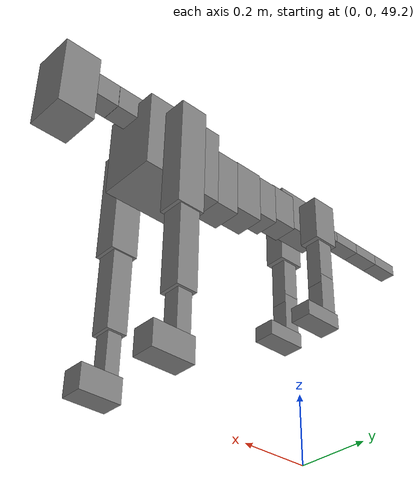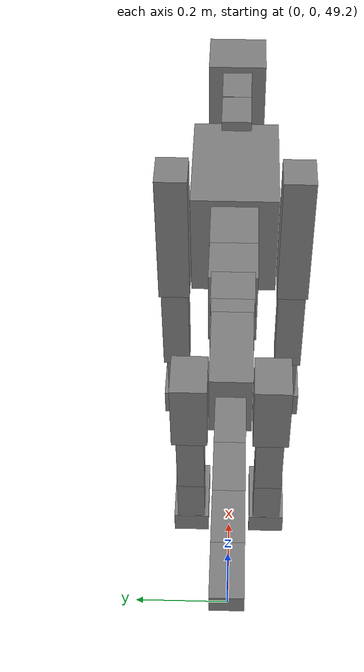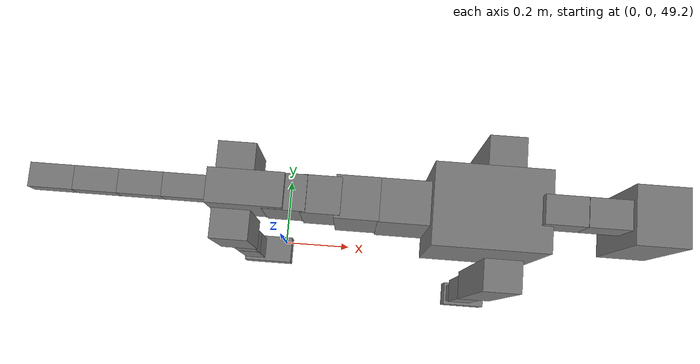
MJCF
<mujoco model="dog">

    <default>
        <joint armature="0.02" stiffness="1" damping="0.2" limited="true"/>
        <geom condim="3" friction="1 0.05 0.05" margin="0.01"/>
        <motor ctrllimited="true" ctrlrange="-1.0 1.0" forcelimited="true" gear="50"/>
    </default>

    <compiler inertiafromgeom="true" angle="radian"/>

    <option timestep="0.016" iterations="50" tolerance="1e-10" solver="Newton" jacobian="dense" cone="pyramidal"/>

    <size nconmax="20000" njmax="60000" nstack="5000000"/>
    <visual>
        <map force="0.1" zfar="30"/>
        <rgba haze="0.15 0.25 0.35 1"/>
        <quality shadowsize="2048"/>
        <global offwidth="800" offheight="800"/>
    </visual>

    <asset>
        <texture type="skybox" builtin="gradient" rgb1="0.3 0.5 0.7" rgb2="0 0 0" width="512" height="512"/>
        <texture name="texplane" type="2d" builtin="checker" rgb1=".2 .3 .4" rgb2=".1 0.15 0.2" width="512" height="512"
                 mark="cross" markrgb=".8 .8 .8"/>
        <texture name="texgeom" type="cube" builtin="flat" mark="cross" width="127" height="1278" rgb1="0.8 0.6 0.4"
                 rgb2="0.8 0.6 0.4" markrgb="1 1 1" random="0.01"/>

        <material name="matplane" reflectance="0.3" texture="texplane" texrepeat="1 1" texuniform="true"/>
        <material name="matgeom" texture="texgeom" texuniform="true" rgba="0.8 0.6 .4 1"/>
    </asset>

    <worldbody>
        <geom name="floor" pos="0 0 0" size="0 0 .25" type="plane" material="matplane" condim="3"/>

        <light directional="false" diffuse=".2 .2 .2" specular="0 0 0" pos="0 0 5" dir="0 0 -1" castshadow="false"/>
        <light mode="targetbodycom" target="torso" directional="false" diffuse=".8 .8 .8" specular="0.3 0.3 0.3"
               pos="0 0 4.0" dir="0 0 -1"/>

        <body name="root" pos="0 0 50">
            <freejoint name="root_1"/>
            <geom type="box" pos="0 0 -0.02" size="0.0774  0.0358  0.063" density="2030"/>

            <body name="spine1" pos="0.054 0 0">
                <joint name="spine1_y" axis="0 1 0" range="0 0.7" limited="true"/>
                <geom type="box" pos="0.02375 0 -0.03" size="0.04375  0.0375  0.05985" density="2030"/>

                <body name="spine2" pos="0.0612 0 0">
                    <joint name="spine2_y" axis="0 1 0" range="-0.15 0.15" limited="true"/>
                    <geom type="box" pos="0.03555  0  -0.04" size="0.04055  0.039  0.06615" density="2030"/>

                    <body name="spine3" pos="0.0730 0 0">
                        <joint name="spine3_y" axis="0 1 0" range="-0.15 0.15" limited="true"/>
                        <geom type="box" pos="0.03555  0  -0.057" size="0.04555  0.0445  0.081" density="2030"/>

                        <body name="spine4" pos="0.0780 0 0">
                            <joint name="spine4_y" axis="0 1 0" range="-0.15 0.15" limited="true"/>
                            <geom type="box" pos="0.05265  0  -0.07" size="0.05265  0.045  0.09135" density="2030"/>

                            <body name="torso" pos="0.1082 0 0">
                                <joint name="torso_y" axis="0 1 0" range="-0.15 0.15" limited="true"/>
                                <geom type="box" pos="0.11925  0  -0.085" size="0.11925  0.085  0.11745"
                                      density="2030"/>

                                <body name="neck1" pos="0.2160  0   0.0180">
                                    <joint name="neck1_y" axis="0 1 0" range="-1.2  -1" limited="true"/>
                                    <geom type="box" pos="0.0423  0  0" size="0.0423  0.03  0.036" density="2325"/>

                                    <body name="neck2" pos="0.0853  0  0">
                                        <joint name="neck2_y" axis="0 1 0" range="0.1  0" limited="true"/>
                                        <geom type="box" pos="0.0423  0  0" size="0.0423  0.03  0.036" density="2325"/>

                                        <body name="head" pos="0.0853  0  0">
                                            <joint name="head_y" axis="0 1 0" range="-0.3  -0.2" limited="true"/>
                                            <geom type="box" pos="0.0531  0  -0.055" size="0.0531  0.06  0.1044"
                                                  density="4030"/>

                                        </body>
                                    </body>
                                </body>

                                <body name="front_shoulder" pos="0.156  0   -0.0480">
                                    <joint name="front_shoulder_y" axis="0 1 0" range="-1 1.5" limited="true"/>
                                    <geom type="box" pos="0 0.13 -0.1364" size="0.0398  0.0341  0.1630" density="1158"/>
                                    <geom type="box" pos="0 -0.13 -0.1364" size="0.0398  0.0341  0.1630"
                                          density="1158"/>

                                    <body name="front_elbow" pos="0  0  -0.2728">
                                        <joint name="front_elbow_y" axis="0 1 0" range="-2 0" limited="true"/>
                                        <geom type="box" pos="0 0.13 -0.1294" size="0.0297  0.0303  0.1294"
                                              density="1081"/>
                                        <geom type="box" pos="0 -0.13 -0.1294" size="0.0297  0.0303  0.1294"
                                              density="1081"/>

                                        <body name="front_wrist" pos="0  0  -0.2588">
                                            <joint name="front_wrist_y" axis="0 1 0" range="-0.2 0" limited="true"/>
                                            <geom type="box" pos="0 0.13 -0.0661" size="0.0206  0.0229  0.0792"
                                                  density="1664"/>
                                            <geom type="box" pos="0 -0.13 -0.0661" size="0.0206  0.0229  0.0792"
                                                  density="1664"/>

                                            <body name="front_finger_end" pos="0  0  -0.1321">
                                                <joint name="front_finger_y" axis="0 1 0" range="-0.4 1"
                                                       limited="true"/>
                                                <geom type="box" pos="0.0325  0.13  -0.0202"
                                                      size="0.0596  0.0325  0.0352" density="1515"/>
                                                <geom type="box" pos="0.0325  -0.13  -0.0202"
                                                      size="0.0596  0.0325  0.0352" density="1515"/>

                                            </body>

                                        </body>
                                    </body>
                                </body>

                            </body>
                        </body>
                    </body>
                </body>
            </body>

            <body name="back_hip" pos="-0.03 0 -0.018">
                <joint name="back_hip_y" axis="0 1 0" range="-1.5 0.3" limited="true"/>
                <geom type="box" pos="0 0.07 -0.0482" size="0.0397  0.0312  0.0710" density="1154"/>
                <geom type="box" pos="0 -0.07 -0.0482" size="0.0397  0.0312  0.0710" density="1154"/>

                <body name="back_knee" pos="0  0  -0.0964">
                    <joint name="back_knee_y" axis="0 1 0" range="0 2.8" limited="true"/>
                    <geom type="box" pos="0 0.07 -0.0759" size="0.0248  0.0245  0.0914" density="1227"/>
                    <geom type="box" pos="0 -0.07 -0.0759" size="0.0248  0.0245  0.0914" density="1227"/>

                    <body name="back_ankle" pos="0  0  -0.1518">
                        <joint name="back_ankle_y" axis="0 1 0" range="-2.2 0" limited="true"/>
                        <geom type="box" pos="0 0.07 -0.0617" size="0.0247  0.0247  0.0729" density="1284"/>
                        <geom type="box" pos="0 -0.07 -0.0617" size="0.0247  0.0247  0.0729" density="1284"/>

                        <body name="back_toe_end" pos="0  0  -0.1233">
                            <joint name="back_toe_y" axis="0 1 0" range="-0.4 1" limited="true"/>
                            <geom type="box" pos="0.0319  0.07  -0.0076" size="0.0585  0.0319  0.0226" density="1515"/>
                            <geom type="box" pos="0.0319  -0.07  -0.0076" size="0.0585  0.0319  0.0226" density="1515"/>

                        </body>
                    </body>
                </body>
            </body>

            <body name="tail1" pos="-0.074 0 -0.006">
                <joint name="tail1_y" axis="0 1 0" range="-0.2 0.2" limited="true"/>
                <geom type="box" pos="-0.0536  0  0" size="0.045  0.025  0.0175" density="1587"/>

                <body name="tail2" pos="-0.09 0 0">
                    <joint name="tail2_y" axis="0 1 0" range="-0.2 0.2" limited="true"/>
                    <geom type="box" pos="-0.0536  0  0" size="0.045  0.025  0.0175" density="1587"/>

                    <body name="tail3" pos="-0.09 0 0">
                        <joint name="tail3_y" axis="0 1 0" range="-0.2 0.2" limited="true"/>
                        <geom type="box" pos="-0.0536  0  0" size="0.045  0.025  0.0175" density="1587"/>

                        <body name="tail4" pos="-0.09 0 0">
                            <joint name="tail4_y" axis="0 1 0" range="-0.2 0.2" limited="true"/>
                            <geom type="box" pos="-0.0536  0  0" size="0.045  0.025  0.0175" density="1587"/>

                        </body>
                    </body>
                </body>
            </body>
        </body>
    </worldbody>

    <actuator>
        <motor joint="spine1_y" forcerange="-150 150     "/>
        <motor joint="spine2_y" forcerange="-150 150     "/>
        <motor joint="spine3_y" forcerange="-150 150     "/>
        <motor joint="spine4_y" forcerange="-150 150     "/>
        <motor joint="torso_y" forcerange="-150 150     "/>
        <motor joint="neck1_y" forcerange="-100 100       "/>
        <motor joint="neck2_y" forcerange="-100 100       "/>
        <motor joint="head_y" forcerange="-150 150       "/>
        <motor joint="front_shoulder_y" forcerange="-193.48 133.52"/>
        <motor joint="front_elbow_y" forcerange="-192.43 128.24"/>
        <motor joint="front_wrist_y" forcerange="-84.76 98.68"/>
        <motor joint="front_finger_y" forcerange="-44.18 89.18"/>
        <motor joint="back_hip_y" forcerange="-293.53 321.83"/>
        <motor joint="back_knee_y" forcerange="-346.40 209.50"/>
        <motor joint="back_angle_y" forcerange="-53.36 242.49"/>
        <motor joint="back_toe_y" forcerange="-46.76 128.31"/>
        <motor joint="tail1_y" forcerange="-50 50     "/>
        <motor joint="tail2_y" forcerange="-50 50     "/>
        <motor joint="tail3_y" forcerange="-50 50     "/>
        <motor joint="tail4_y" forcerange="-50 50     "/>
    </actuator>
</mujoco>
